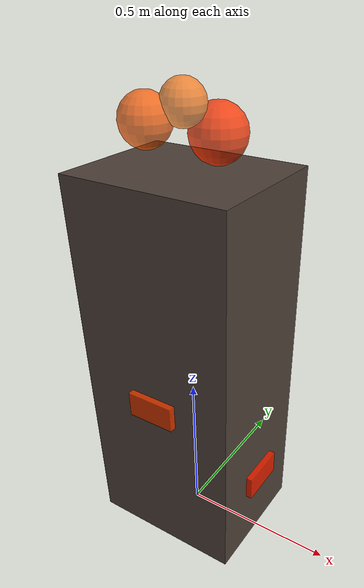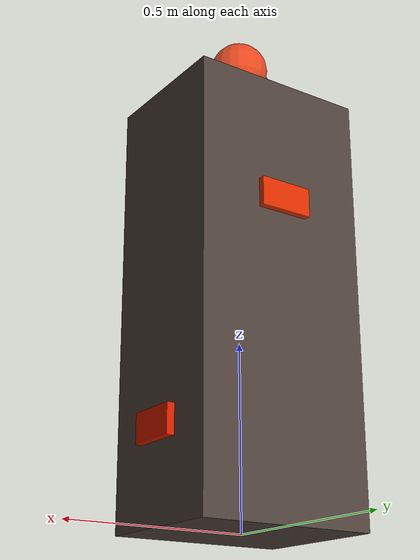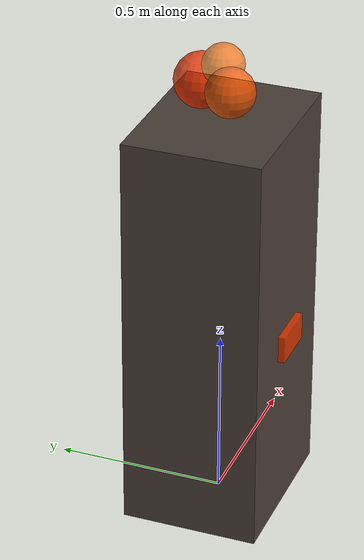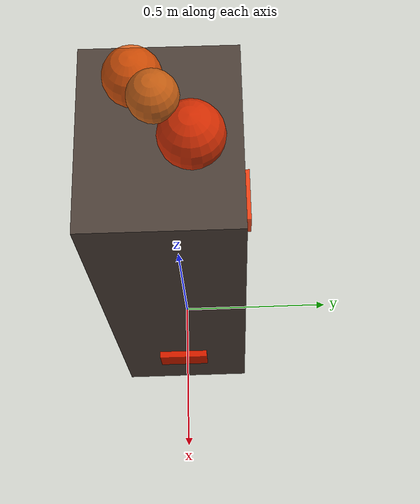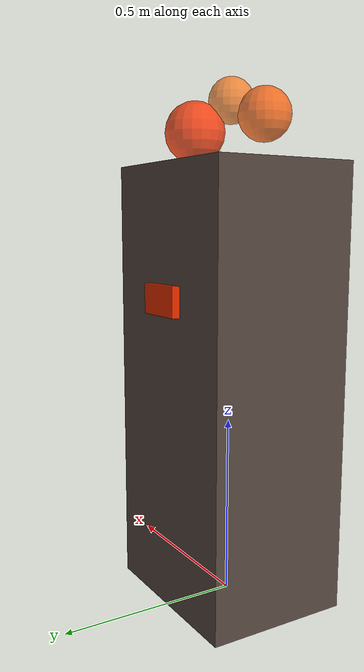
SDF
<?xml version="1.0" ?>
<sdf version="1.6">
  <model name="building_fire">
    <static>true</static>
    <!-- 主楼体 — 着火高楼 -->
    <link name="main_body">
      <pose>0 0 0.6 0 0 0</pose>
      <visual name="body_v">
        <geometry><box><size>0.5 0.4 1.2</size></box></geometry>
        <material>
          <ambient>0.35 0.3 0.28 1.0</ambient>
          <diffuse>0.3 0.25 0.22 1.0</diffuse>
        </material>
      </visual>
      <collision name="body_c">
        <geometry><box><size>0.5 0.4 1.2</size></box></geometry>
      </collision>
    </link>
    <!-- 窗户冒火 -->
    <link name="fire_window1">
      <pose>0 0.21 0.85 0 0 0</pose>
      <visual name="fw1_v">
        <geometry><box><size>0.15 0.02 0.08</size></box></geometry>
        <material>
          <ambient>1.0 0.3 0.0 0.9</ambient>
          <diffuse>1.0 0.2 0.0 0.85</diffuse>
        </material>
      </visual>
    </link>
    <link name="fire_window2">
      <pose>0 -0.21 0.55 0 0 0</pose>
      <visual name="fw2_v">
        <geometry><box><size>0.15 0.02 0.08</size></box></geometry>
        <material>
          <ambient>1.0 0.35 0.0 0.85</ambient>
          <diffuse>1.0 0.25 0.0 0.8</diffuse>
        </material>
      </visual>
    </link>
    <link name="fire_window3">
      <pose>0.26 0 0.25 0 0 0</pose>
      <visual name="fw3_v">
        <geometry><box><size>0.02 0.15 0.08</size></box></geometry>
        <material>
          <ambient>1.0 0.25 0.0 0.9</ambient>
          <diffuse>1.0 0.15 0.0 0.85</diffuse>
        </material>
      </visual>
    </link>
    <!-- 楼顶火焰 -->
    <link name="flame1">
      <pose>0.05 0.08 1.28 0 0 0</pose>
      <visual name="f1_v">
        <geometry><sphere><radius>0.08</radius></sphere></geometry>
        <material>
          <ambient>1.0 0.3 0.0 0.85</ambient>
          <diffuse>1.0 0.2 0.0 0.8</diffuse>
        </material>
      </visual>
    </link>
    <link name="flame2">
      <pose>-0.08 -0.05 1.32 0 0 0</pose>
      <visual name="f2_v">
        <geometry><sphere><radius>0.07</radius></sphere></geometry>
        <material>
          <ambient>1.0 0.4 0.05 0.8</ambient>
          <diffuse>1.0 0.35 0.0 0.75</diffuse>
        </material>
      </visual>
    </link>
    <link name="flame3">
      <pose>0.0 0.0 1.36 0 0 0</pose>
      <visual name="f3_v">
        <geometry><sphere><radius>0.06</radius></sphere></geometry>
        <material>
          <ambient>1.0 0.5 0.1 0.75</ambient>
          <diffuse>1.0 0.45 0.05 0.7</diffuse>
        </material>
      </visual>
    </link>
    <joint name="fw1_j" type="fixed"><parent>main_body</parent><child>fire_window1</child></joint>
    <joint name="fw2_j" type="fixed"><parent>main_body</parent><child>fire_window2</child></joint>
    <joint name="fw3_j" type="fixed"><parent>main_body</parent><child>fire_window3</child></joint>
    <joint name="f1_j" type="fixed"><parent>main_body</parent><child>flame1</child></joint>
    <joint name="f2_j" type="fixed"><parent>main_body</parent><child>flame2</child></joint>
    <joint name="f3_j" type="fixed"><parent>main_body</parent><child>flame3</child></joint>
  </model>
</sdf>
